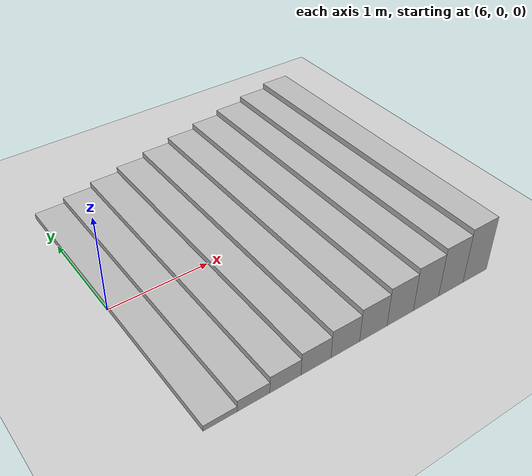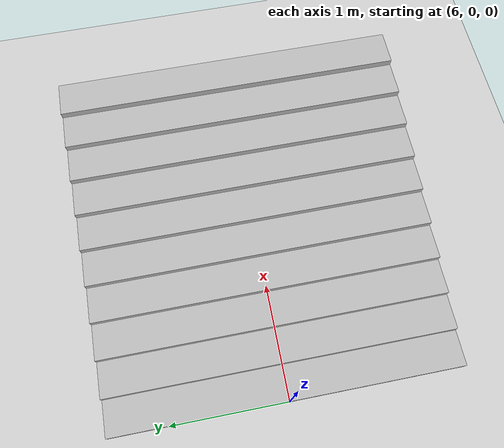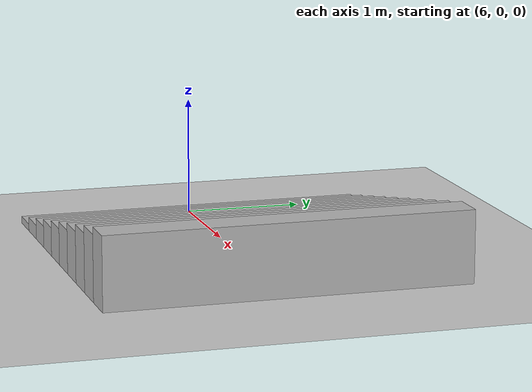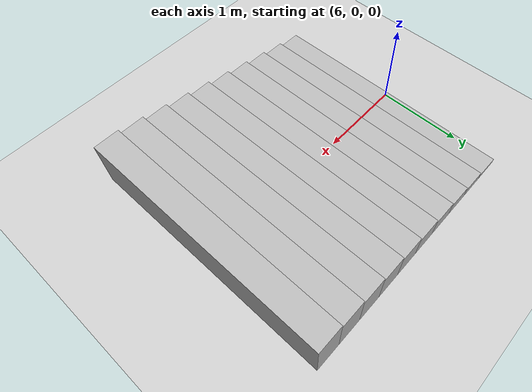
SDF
<?xml version="1.0"?>
<sdf version="1.7">
  <world name="stairs">
    <include>
      <uri>model://sun</uri>
    </include>

    <physics type="ode">
      <max_step_size>0.001</max_step_size>
      <real_time_update_rate>1000</real_time_update_rate>
    </physics>
    <gravity>0 0 -9.81</gravity>

    <model name="ground_plane">
      <static>true</static>
      <pose>0 0 0 0 0 0</pose>
      <link name="link">
        <collision name="collision">
          <geometry>
            <plane>
              <normal>0 0 1</normal>
              <size>200 200</size>
            </plane>
          </geometry>
        </collision>
        <visual name="visual">
          <geometry>
            <plane>
              <normal>0 0 1</normal>
              <size>200 200</size>
            </plane>
          </geometry>
        </visual>
      </link>
    </model>

    <!-- Staircase built from progressively taller blocks -->
    <model name="stairs">
      <static>true</static>
      <pose>6 0 0 0 0 0</pose>
      <link name="link">
        <!-- step: tread=0.30m, width=3.0m, rise=0.06m -->
        <collision name="step_0"><pose>0.15 0 0.03 0 0 0</pose><geometry><box><size>0.30 3.0 0.06</size></box></geometry></collision>
        <visual name="step_0_vis"><pose>0.15 0 0.03 0 0 0</pose><geometry><box><size>0.30 3.0 0.06</size></box></geometry></visual>

        <collision name="step_1"><pose>0.45 0 0.06 0 0 0</pose><geometry><box><size>0.30 3.0 0.12</size></box></geometry></collision>
        <visual name="step_1_vis"><pose>0.45 0 0.06 0 0 0</pose><geometry><box><size>0.30 3.0 0.12</size></box></geometry></visual>

        <collision name="step_2"><pose>0.75 0 0.09 0 0 0</pose><geometry><box><size>0.30 3.0 0.18</size></box></geometry></collision>
        <visual name="step_2_vis"><pose>0.75 0 0.09 0 0 0</pose><geometry><box><size>0.30 3.0 0.18</size></box></geometry></visual>

        <collision name="step_3"><pose>1.05 0 0.12 0 0 0</pose><geometry><box><size>0.30 3.0 0.24</size></box></geometry></collision>
        <visual name="step_3_vis"><pose>1.05 0 0.12 0 0 0</pose><geometry><box><size>0.30 3.0 0.24</size></box></geometry></visual>

        <collision name="step_4"><pose>1.35 0 0.15 0 0 0</pose><geometry><box><size>0.30 3.0 0.30</size></box></geometry></collision>
        <visual name="step_4_vis"><pose>1.35 0 0.15 0 0 0</pose><geometry><box><size>0.30 3.0 0.30</size></box></geometry></visual>

        <collision name="step_5"><pose>1.65 0 0.18 0 0 0</pose><geometry><box><size>0.30 3.0 0.36</size></box></geometry></collision>
        <visual name="step_5_vis"><pose>1.65 0 0.18 0 0 0</pose><geometry><box><size>0.30 3.0 0.36</size></box></geometry></visual>

        <collision name="step_6"><pose>1.95 0 0.21 0 0 0</pose><geometry><box><size>0.30 3.0 0.42</size></box></geometry></collision>
        <visual name="step_6_vis"><pose>1.95 0 0.21 0 0 0</pose><geometry><box><size>0.30 3.0 0.42</size></box></geometry></visual>

        <collision name="step_7"><pose>2.25 0 0.24 0 0 0</pose><geometry><box><size>0.30 3.0 0.48</size></box></geometry></collision>
        <visual name="step_7_vis"><pose>2.25 0 0.24 0 0 0</pose><geometry><box><size>0.30 3.0 0.48</size></box></geometry></visual>

        <collision name="step_8"><pose>2.55 0 0.27 0 0 0</pose><geometry><box><size>0.30 3.0 0.54</size></box></geometry></collision>
        <visual name="step_8_vis"><pose>2.55 0 0.27 0 0 0</pose><geometry><box><size>0.30 3.0 0.54</size></box></geometry></visual>

        <collision name="step_9"><pose>2.85 0 0.30 0 0 0</pose><geometry><box><size>0.30 3.0 0.60</size></box></geometry></collision>
        <visual name="step_9_vis"><pose>2.85 0 0.30 0 0 0</pose><geometry><box><size>0.30 3.0 0.60</size></box></geometry></visual>
      </link>
    </model>
  </world>
</sdf>
